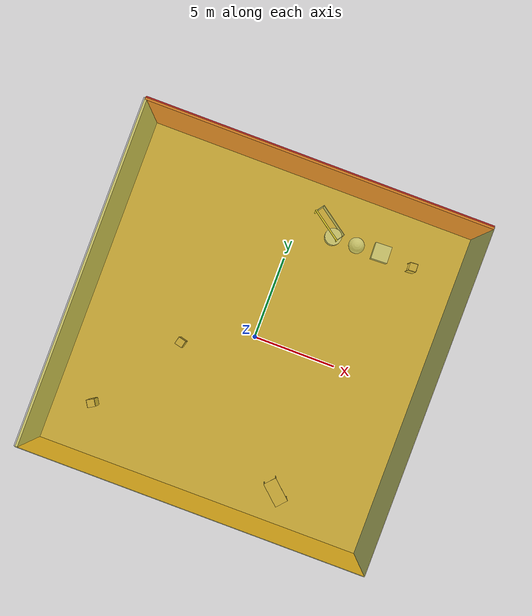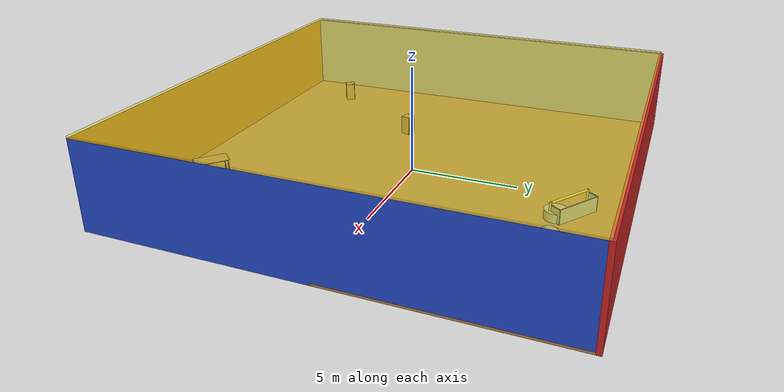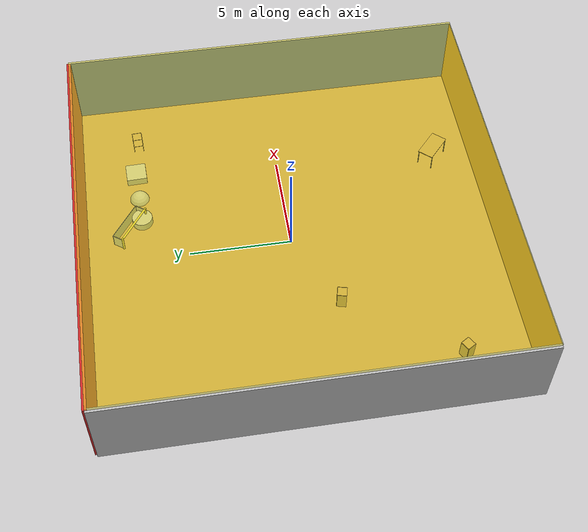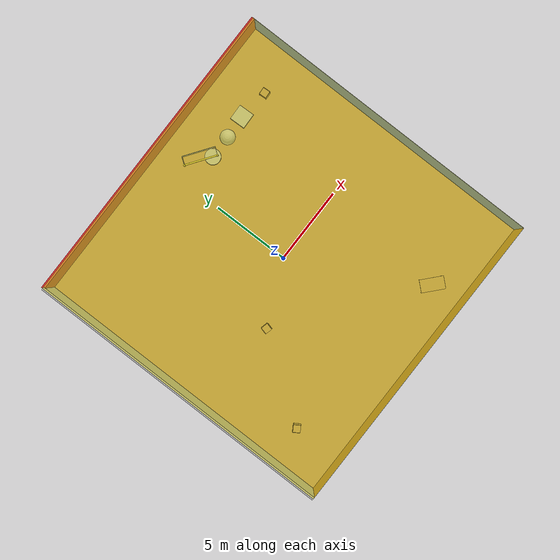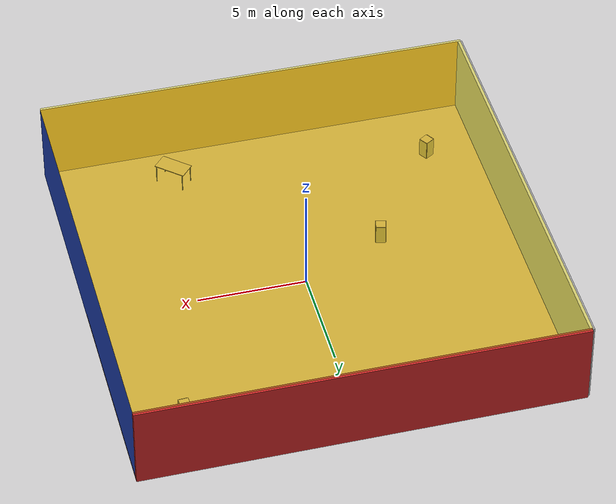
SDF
<sdf version="1.4">
 <world name="default">
  <physics type="ode">
   <max_step_size>0.001</max_step_size>
   <real_time_factor>1</real_time_factor>
   <real_time_update_rate>1000</real_time_update_rate>
   <gravity>0 0 -9.8</gravity>
  </physics>
  <scene><ambient>0.4 0.4 0.4 1</ambient><background>0.7 0.7 0.7 1</background><shadows>1</shadows></scene>
  <model name="Surrounding">
   <static>1</static>
   <link name="Ceiling">
    <collision name="Ceiling_Collision"><geometry><box><size>20 20 0.1</size></box></geometry></collision>
    <visual name="Ceiling_Visual">
     <geometry><box><size>20 20 0.1</size></box></geometry>
     <material>
      <script>
       <uri>file://media/materials/scripts/gazebo.material</uri>
       <name>Gazebo/YellowTransparent</name>
      </script>
     </material>
    </visual>
    <pose>0 0 4.05 0 0 0</pose>
   </link>
   <link name="Wall_South">
    <collision name="Wall_South_Collision">
     <geometry><box><size>20 0 4</size></box></geometry>
     <pose>0 0 2 0 -0 0</pose>
    </collision>
    <visual name="Wall_South_Visual">
     <pose>0 0 2 0 -0 0</pose>
     <geometry><box><size>20 0 4</size></box></geometry>
     <material>
      <script><uri>file://media/materials/scripts/gazebo.material</uri><name>Gazebo/Orange</name></script>
     </material>
    </visual>
    <velocity_decay><linear>0</linear><angular>0</angular></velocity_decay>
    <pose>0 -10 0 0 -0 0</pose>
   </link>
   <link name="Wall_East">
    <collision name="Wall_21_Collision">
     <geometry><box><size>20 0 4</size></box></geometry>
     <pose>0 0 2 0 -0 0</pose>
    </collision>
    <visual name="Wall_21_Visual">
     <pose>0 0 2 0 -0 0</pose>
     <geometry><box><size>20 0 4</size></box></geometry>
     <material>
      <script><uri>file://media/materials/scripts/gazebo.material</uri><name>Gazebo/Blue</name></script>
     </material>
    </visual>
    <velocity_decay><linear>0</linear><angular>0</angular></velocity_decay>
    <pose>10 0 0 0 -0 1.5708</pose>
   </link>
   <link name="Wall_North">
    <collision name="Wall_22_Collision">
     <geometry><box><size>20 0.2 4</size></box></geometry>
     <pose>0 0 2 0 -0 0</pose>
    </collision>
    <visual name="Wall_22_Visual">
     <pose>0 0 2 0 -0 0</pose>
     <geometry><box><size>20 0.2 4</size></box></geometry>
     <material>
      <script><uri>file://media/materials/scripts/gazebo.material</uri><name>Gazebo/RedBright</name></script>
     </material>
    </visual>
    <velocity_decay><linear>0</linear><angular>0</angular></velocity_decay>
    <pose>0 10 0 0 -0 0</pose>
   </link>
   <link name="Wall_West">
    <collision name="Wall_23_Collision">
     <geometry><box><size>20 0.2 4</size></box></geometry>
     <pose>0 0 2 0 -0 0</pose>
    </collision>
    <visual name="Wall_23_Visual">
     <pose>0 0 2 0 -0 0</pose>
     <geometry><box><size>20 0.2 4</size></box></geometry>
     <material>
      <script><uri>file://media/materials/scripts/gazebo.material</uri><name>Gazebo/JointAnchor</name></script>
     </material>
    </visual>
    <velocity_decay><linear>0</linear><angular>0</angular></velocity_decay>
    <pose>-10 0 0 0 0 -1.5708</pose>
   </link>
   <link name="Ground_link">
    <collision name="collision">
     <pose>0 0 .05 0 -0 0</pose>
     <geometry><box><size>20 20 0.1</size></box></geometry>
    </collision>
    <visual name="visual">
     <pose>0 0 .05 0 -0 0</pose>
     <geometry><box><size>20 20 0.1</size></box></geometry>
     <material>
      <script><uri>file://media/materials/scripts/gazebo.material</uri><name>Gazebo/WoodFloor</name></script>
     </material>
    </visual>
   </link>
   <static>1</static>
  </model>
  <spherical_coordinates>
   <surface_model>EARTH_WGS84</surface_model>
   <latitude_deg>0</latitude_deg>
   <longitude_deg>0</longitude_deg>
   <elevation>0</elevation>
   <heading_deg>0</heading_deg>
  </spherical_coordinates>
  <light name="lightball_0" type="diffuse">
   <diffuse>0.8 0.8 0.8 1</diffuse>
   <specular>0.2 0.2 0.2 1</specular>
   <attenuation>
    <range>100</range>
    <constant>0.7</constant>
    <linear>0.01</linear>
    <quadratic>0.001</quadratic>
   </attenuation>
   <direction>-0.5 0.1 -0.9</direction>
   <pose>-5.35259485377 -3.09003432621 0.767199394633 0 0 0</pose>
  </light>
  <light name="lightball_1" type="diffuse">
   <diffuse>0.8 0.8 0.8 1</diffuse>
   <specular>0.2 0.2 0.2 1</specular>
   <attenuation>
    <range>100</range>
    <constant>0.7</constant>
    <linear>0.01</linear>
    <quadratic>0.001</quadratic>
   </attenuation>
   <direction>-0.5 0.1 -0.9</direction>
   <pose>-5.75067058367 -4.28329026193 2.8587672403 0 0 0</pose>
  </light>
  <light name="lightball_2" type="diffuse">
   <diffuse>0.8 0.8 0.8 1</diffuse>
   <specular>0.2 0.2 0.2 1</specular>
   <attenuation>
    <range>100</range>
    <constant>0.7</constant>
    <linear>0.01</linear>
    <quadratic>0.001</quadratic>
   </attenuation>
   <direction>-0.5 0.1 -0.9</direction>
   <pose>-6.73893136306 5.76373875126 3.1744354877 0 0 0</pose>
  </light>
  <light name="lightball_3" type="diffuse">
   <diffuse>0.8 0.8 0.8 1</diffuse>
   <specular>0.2 0.2 0.2 1</specular>
   <attenuation>
    <range>100</range>
    <constant>0.7</constant>
    <linear>0.01</linear>
    <quadratic>0.001</quadratic>
   </attenuation>
   <direction>-0.5 0.1 -0.9</direction>
   <pose>7.26328773344 -3.86685721944 1.16067451997 0 0 0</pose>
  </light>
  <light name="lightball_4" type="diffuse">
   <diffuse>0.8 0.8 0.8 1</diffuse>
   <specular>0.2 0.2 0.2 1</specular>
   <attenuation>
    <range>100</range>
    <constant>0.7</constant>
    <linear>0.01</linear>
    <quadratic>0.001</quadratic>
   </attenuation>
   <direction>-0.5 0.1 -0.9</direction>
   <pose>-4.68792334027 0.853808469365 0.560826678725 0 0 0</pose>
  </light>
  <light name="lightball_5" type="diffuse">
   <diffuse>0.8 0.8 0.8 1</diffuse>
   <specular>0.2 0.2 0.2 1</specular>
   <attenuation>
    <range>100</range>
    <constant>0.7</constant>
    <linear>0.01</linear>
    <quadratic>0.001</quadratic>
   </attenuation>
   <direction>-0.5 0.1 -0.9</direction>
   <pose>0.343034214043 9.7761554347 3.03986583309 0 0 0</pose>
  </light>
  <include><uri>model://cabinet</uri><pose>-7.58789593925 -6.93943607702 0 0 0 2.11999195448</pose></include>
  <include><uri>model://cabinet</uri><pose>-3.95368759902 -1.80518962059 0 0 0 1.32959130272</pose></include>
  <include>
   <uri>model://robocup_3Dsim_goal</uri>
   <pose>1.63208967605 7.56397952906 0 0 0 0.95195158712</pose>
  </include>
  <include><uri>model://table</uri><pose>4.287715841 -8.04783286417 0 0 0 2.40951364465</pose></include>
  <include>
   <uri>model://textured_shapes</uri>
   <pose>3.75555951399 7.20462610547 0 0 0 1.60327478688</pose>
  </include>
  <include><uri>model://cabinet</uri><pose>7.19632514916 7.0158076946 0 0 0 0.0529656434721</pose></include>
 </world>
</sdf>

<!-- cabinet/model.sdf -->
<sdf version="1.5">
  <model name="cabinet">
    <static>true</static>
    <link name="cabinet_bottom_plate">
      <inertial>
        <pose>0 0 -1 0 0 0</pose>
        <inertia>
          <ixx>2.050000</ixx>
          <ixy>0</ixy>
          <ixz>0</ixz>
          <iyy>2.050000</iyy>
          <iyz>0</iyz>
          <izz>2.050000</izz>
        </inertia>
        <mass>25.000000</mass>
      </inertial>
      <collision name="cabinet_bottom_plate_geom">
        <pose>0 0 0.010000 0 0 0</pose>
        <geometry>
          <box>
            <size>0.450000 0.450000 0.020000</size>
          </box>
        </geometry>
      </collision>
      <visual name="cabinet_bottom_plate_geom_visual">
        <pose>0 0 0.010000 0 0 0</pose>
        <geometry>
          <box>
            <size>0.450000 0.450000 0.020000</size>
          </box>
        </geometry>
        <material>
          <script>
            <uri>model://media/materials/scripts/gazebo.material</uri>
            <name>Gazebo/Wood</name>
          </script>
        </material>
      </visual>
      <collision name="cabinet_bottom_plate_geom_cabinet_back_plate">
        <pose>0.235000 0 0.510000 0 0 0</pose>
        <geometry>
          <box>
            <size>0.020000 0.450000 1.020000</size>
          </box>
        </geometry>
      </collision>
      <visual name="cabinet_bottom_plate_geom_cabinet_back_plate_visual">
        <pose>0.235000 0 0.510000 0 0 0</pose>
        <geometry>
          <box>
            <size>0.020000 0.450000 1.020000</size>
          </box>
        </geometry>
        <material>
          <script>
            <uri>model://media/materials/scripts/gazebo.material</uri>
            <name>Gazebo/Wood</name>
          </script>
        </material>
      </visual>
      <collision name="cabinet_bottom_plate_geom_cabinet_left_plate">
        <pose>0 0.235000 0.510000 0 0 0</pose>
        <geometry>
          <box>
            <size>0.450000 0.020000 1.020000</size>
          </box>
        </geometry>
      </collision>
      <visual name="cabinet_bottom_plate_geom_cabinet_left_plate_visual">
        <pose>0 0.235000 0.510000 0 0 0</pose>
        <geometry>
          <box>
            <size>0.450000 0.020000 1.020000</size>
          </box>
        </geometry>
        <material>
          <script>
            <uri>model://media/materials/scripts/gazebo.material</uri>
            <name>Gazebo/Wood</name>
          </script>
        </material>
      </visual>
      <collision name="cabinet_bottom_plate_geom_cabinet_middle_plate">
        <pose>0 0 0.510000 0 0 0</pose>
        <geometry>
          <box>
            <size>0.450000 0.450000 0.020000</size>
          </box>
        </geometry>
      </collision>
      <visual name="cabinet_bottom_plate_geom_cabinet_middle_plate_visual">
        <pose>0 0 0.510000 0 0 0</pose>
        <geometry>
          <box>
            <size>0.450000 0.450000 0.020000</size>
          </box>
        </geometry>
        <material>
          <script>
            <uri>model://media/materials/scripts/gazebo.material</uri>
            <name>Gazebo/Wood</name>
          </script>
        </material>
      </visual>
      <collision name="cabinet_bottom_plate_geom_cabinet_right_plate">
        <pose>0 -0.235000 0.510000 0 0 0</pose>
        <geometry>
          <box>
            <size>0.450000 0.020000 1.020000</size>
          </box>
        </geometry>
      </collision>
      <visual name="cabinet_bottom_plate_geom_cabinet_right_plate_visual">
        <pose>0 -0.235000 0.510000 0 0 0</pose>
        <geometry>
          <box>
            <size>0.450000 0.020000 1.020000</size>
          </box>
        </geometry>
        <material>
          <script>
            <uri>model://media/materials/scripts/gazebo.material</uri>
            <name>Gazebo/Wood</name>
          </script>
        </material>
      </visual>
      <collision name="cabinet_bottom_plate_geom_cabinet_top_plate">
        <pose>0 0 1.010000 0 0 0</pose>
        <geometry>
          <box>
            <size>0.450000 0.450000 0.020000</size>
          </box>
        </geometry>
      </collision>
      <visual name="cabinet_bottom_plate_geom_cabinet_top_plate_visual">
        <pose>0 0 1.010000 0 0 0</pose>
        <geometry>
          <box>
            <size>0.450000 0.450000 0.020000</size>
          </box>
        </geometry>
        <material>
          <script>
            <uri>model://media/materials/scripts/gazebo.material</uri>
            <name>Gazebo/Wood</name>
          </script>
        </material>
      </visual>
    </link>
  </model>
</sdf>

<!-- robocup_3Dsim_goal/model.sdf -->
<sdf version="1.5">
  <model name="robocup_3d_goal">
    <static>true</static>
    <link name="left_post">
      <pose>0 1.05 0.45 0 0 0</pose>
      <collision name="collision">
        <geometry>
          <cylinder>
            <radius>0.05</radius>
            <length>0.9</length>
          </cylinder>
        </geometry>
      </collision>
      <visual name="visual">
        <geometry>
          <cylinder>
            <radius>0.05</radius>
            <length>0.9</length>
          </cylinder>
        </geometry>
        <material>
          <script>
            <uri>file://media/materials/scripts/gazebo.material</uri>
            <name>Gazebo/ZincYellow</name>
          </script>
        </material>
      </visual>
    </link>
    <link name="left_support_horiz_lower">
      <pose>0.30 1.05 0.01 0 0 0</pose>
      <collision name="collision">
        <geometry>
          <box>
            <size>0.50 0.02 0.02</size>
          </box>
        </geometry>
      </collision>
      <visual name="visual">
        <geometry>
          <box>
            <size>0.50 0.02 0.02</size>
          </box>
        </geometry>
        <material>
          <script>
            <uri>file://media/materials/scripts/gazebo.material</uri>
            <name>Gazebo/White</name>
          </script>
        </material>
      </visual>
    </link>
    <link name="left_support_horiz_upper">
      <pose>0.30 1.05 0.79 0 0 0</pose>
      <collision name="collision">
        <geometry>
          <box>
            <size>0.50 0.02 0.02</size>
          </box>
        </geometry>
      </collision>
      <visual name="visual">
        <geometry>
          <box>
            <size>0.50 0.02 0.02</size>
          </box>
        </geometry>
        <material>
          <script>
            <uri>file://media/materials/scripts/gazebo.material</uri>
            <name>Gazebo/White</name>
          </script>
        </material>
      </visual>
    </link>
    <link name="left_support_vertical">
      <pose>0.56 1.05 0.4 0 1.5708 0</pose>
      <collision name="collision">
        <geometry>
          <box>
            <size>0.80 0.02 0.02</size>
          </box>
        </geometry>
      </collision>
      <visual name="visual">
        <geometry>
          <box>
            <size>0.80 0.02 0.02</size>
          </box>
        </geometry>
        <material>
          <script>
            <uri>file://media/materials/scripts/gazebo.material</uri>
            <name>Gazebo/White</name>
          </script>
        </material>
      </visual>
    </link>
    <link name="right_support_horiz_lower">
      <pose>0.30 -1.05 0.01 0 0 0</pose>
      <collision name="collision">
        <geometry>
          <box>
            <size>0.50 0.02 0.02</size>
          </box>
        </geometry>
      </collision>
      <visual name="visual">
        <geometry>
          <box>
            <size>0.50 0.02 0.02</size>
          </box>
        </geometry>
        <material>
          <script>
            <uri>file://media/materials/scripts/gazebo.material</uri>
            <name>Gazebo/White</name>
          </script>
        </material>
      </visual>
    </link>
    <link name="right_support_horiz_upper">
      <pose>0.30 -1.05 0.79 0 0 0</pose>
      <collision name="collision">
        <geometry>
          <box>
            <size>0.50 0.02 0.02</size>
          </box>
        </geometry>
      </collision>
      <visual name="visual">
        <geometry>
          <box>
            <size>0.50 0.02 0.02</size>
          </box>
        </geometry>
        <material>
          <script>
            <uri>file://media/materials/scripts/gazebo.material</uri>
            <name>Gazebo/White</name>
          </script>
        </material>
      </visual>
    </link>
    <link name="right_support_vertical">
      <pose>0.56 -1.05 0.4 0 1.5708 0</pose>
      <collision name="collision">
        <geometry>
          <box>
            <size>0.80 0.02 0.02</size>
          </box>
        </geometry>
      </collision>
      <visual name="visual">
        <geometry>
          <box>
            <size>0.80 0.02 0.02</size>
          </box>
        </geometry>
        <material>
          <script>
            <uri>file://media/materials/scripts/gazebo.material</uri>
            <name>Gazebo/White</name>
          </script>
        </material>
      </visual>
    </link>
    <link name="center_support_horiz_lower">
      <pose>0.56 0 0.01 0 1.5708 0</pose>
      <collision name="collision">
        <geometry>
          <box>
            <size>0.02 2.08 0.02</size>
          </box>
        </geometry>
      </collision>
      <visual name="visual">
        <geometry>
          <box>
            <size>0.02 2.08 0.02</size>
          </box>
        </geometry>
        <material>
          <script>
            <uri>file://media/materials/scripts/gazebo.material</uri>
            <name>Gazebo/White</name>
          </script>
        </material>
      </visual>
    </link>
    <link name="center_support_horiz_upper">
      <pose>0.56 0 0.79 0 1.5708 0</pose>
      <collision name="collision">
        <geometry>
          <box>
            <size>0.02 2.08 0.02</size>
          </box>
        </geometry>
      </collision>
      <visual name="visual">
        <geometry>
          <box>
            <size>0.02 2.08 0.02</size>
          </box>
        </geometry>
        <material>
          <script>
            <uri>file://media/materials/scripts/gazebo.material</uri>
            <name>Gazebo/White</name>
          </script>
        </material>
      </visual>
    </link>
    <link name="right_post">
      <pose>0 -1.05 0.45 0 0 0</pose>
      <collision name="collision">
        <geometry>
          <cylinder>
            <radius>0.05</radius>
            <length>0.9</length>
          </cylinder>
        </geometry>
      </collision>
      <visual name="visual">
        <geometry>
          <cylinder>
            <radius>0.05</radius>
            <length>0.9</length>
          </cylinder>
        </geometry>
        <material>
          <script>
            <uri>file://media/materials/scripts/gazebo.material</uri>
            <name>Gazebo/ZincYellow</name>
          </script>
        </material>
      </visual>
    </link>
    <link name="crossbar">
      <pose>0 0 0.85 1.57 1.57 0</pose>
      <collision name="collision">
        <geometry>
          <cylinder>
            <radius>0.05</radius>
            <length>2.0</length>
          </cylinder>
        </geometry>
      </collision>
      <visual name="visual">
        <geometry>
          <cylinder>
            <radius>0.05</radius>
            <length>2.0</length>
          </cylinder>
        </geometry>
        <material>
          <script>
            <uri>file://media/materials/scripts/gazebo.material</uri>
            <name>Gazebo/ZincYellow</name>
          </script>
        </material>
      </visual>
    </link>
    <link name="center_net">
      <pose>0.56 0 0.40 0 0 0</pose>
      <collision name="collision">
        <geometry>
          <box>
            <size>0.01 2.1 0.80</size>
          </box>
        </geometry>
      </collision>
      <visual name="visual">
        <geometry>
          <box>
            <size>0.01 2.1 0.80</size>
          </box>
        </geometry>
        <material>
          <script>
            <uri>model://../model_source/models/robocup09_spl_field/materials/scripts/</uri>
            <uri>model://../model_source/models/robocup09_spl_field/materials/textures/</uri>
            <name>RoboCup/Net</name>
          </script>
        </material>
      </visual>
    </link>
    <link name="left_net">
      <pose>0.30 1.05 0.40 0 0 0</pose>
      <collision name="collision">
        <geometry>
          <box>
            <size>0.50 0.01 0.76</size>
          </box>
        </geometry>
      </collision>
      <visual name="visual">
        <geometry>
          <box>
            <size>0.50 0.01 0.76</size>
          </box>
        </geometry>
        <material>
          <script>
            <uri>model://../model_source/models/robocup09_spl_field/materials/scripts/</uri>
            <uri>model://../model_source/models/robocup09_spl_field/materials/textures/</uri>
            <name>RoboCup/Net</name>
          </script>
        </material>
      </visual>
    </link>
    <link name="right_net">
      <pose>0.30 -1.05 0.40 0 0 0</pose>
      <collision name="collision">
        <geometry>
          <box>
            <size>0.50 0.01 0.76</size>
          </box>
        </geometry>
      </collision>
      <visual name="visual">
        <geometry>
          <box>
            <size>0.50 0.01 0.76</size>
          </box>
        </geometry>
        <material>
          <script>
            <uri>model://../model_source/models/robocup09_spl_field/materials/scripts/</uri>
            <uri>model://../model_source/models/robocup09_spl_field/materials/textures/</uri>
            <name>RoboCup/Net</name>
          </script>
        </material>
      </visual>
    </link>
  </model>
</sdf>

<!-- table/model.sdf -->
<sdf version="1.5">
  <model name="table">
    <static>true</static>
    <link name="link">
      <collision name="surface">
        <pose>0 0 1.0 0 0 0</pose>
        <geometry>
          <box>
            <size>1.5 0.8 0.03</size>
          </box>
        </geometry>
        <surface>
          <friction>
            <ode>
              <mu>0.6</mu>
              <mu2>0.6</mu2>
            </ode>
          </friction>
        </surface>
      </collision>
      <visual name="visual1">
        <pose>0 0 1.0 0 0 0</pose>
        <geometry>
          <box>
            <size>1.5 0.8 0.03</size>
          </box>
        </geometry>
        <material>
          <script>
            <uri>model://media/materials/scripts/gazebo.material</uri>
            <name>Gazebo/Wood</name>
          </script>
        </material>
      </visual>
      <collision name="front_left_leg">
        <pose>0.68 0.38 0.5 0 0 0</pose>
        <geometry>
          <cylinder>
            <radius>0.02</radius>
            <length>1.0</length>
          </cylinder>
        </geometry>
      </collision>
      <visual name="front_left_leg">
        <pose>0.68 0.38 0.5 0 0 0</pose>
        <geometry>
          <cylinder>
            <radius>0.02</radius>
            <length>1.0</length>
          </cylinder>
        </geometry>
        <material>
          <script>
            <uri>model://media/materials/scripts/gazebo.material</uri>
            <name>Gazebo/Grey</name>
          </script>
        </material>
      </visual>
      <collision name="front_right_leg">
        <pose>0.68 -0.38 0.5 0 0 0</pose>
        <geometry>
          <cylinder>
            <radius>0.02</radius>
            <length>1.0</length>
          </cylinder>
        </geometry>
      </collision>
      <visual name="front_right_leg">
        <pose>0.68 -0.38 0.5 0 0 0</pose>
        <geometry>
          <cylinder>
            <radius>0.02</radius>
            <length>1.0</length>
          </cylinder>
        </geometry>
        <material>
          <script>
            <uri>model://media/materials/scripts/gazebo.material</uri>
            <name>Gazebo/Grey</name>
          </script>
        </material>
      </visual>
      <collision name="back_right_leg">
        <pose>-0.68 -0.38 0.5 0 0 0</pose>
        <geometry>
          <cylinder>
            <radius>0.02</radius>
            <length>1.0</length>
          </cylinder>
        </geometry>
      </collision>
      <visual name="back_right_leg">
        <pose>-0.68 -0.38 0.5 0 0 0</pose>
        <geometry>
          <cylinder>
            <radius>0.02</radius>
            <length>1.0</length>
          </cylinder>
        </geometry>
        <material>
          <script>
            <uri>model://media/materials/scripts/gazebo.material</uri>
            <name>Gazebo/Grey</name>
          </script>
        </material>
      </visual>
      <collision name="back_left_leg">
        <pose>-0.68 0.38 0.5 0 0 0</pose>
        <geometry>
          <cylinder>
            <radius>0.02</radius>
            <length>1.0</length>
          </cylinder>
        </geometry>
      </collision>
      <visual name="back_left_leg">
        <pose>-0.68 0.38 0.5 0 0 0</pose>
        <geometry>
          <cylinder>
            <radius>0.02</radius>
            <length>1.0</length>
          </cylinder>
        </geometry>
        <material>
          <script>
            <uri>model://media/materials/scripts/gazebo.material</uri>
            <name>Gazebo/Grey</name>
          </script>
        </material>
      </visual>
    </link>
  </model>
</sdf>

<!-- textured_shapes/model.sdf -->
<sdf version="1.6">
  <model name="textured_shapes">
    <pose>0 0 0.5 0 0 0</pose>
    <link name="box">
      <pose>0 -1.5 0 0 0 0</pose>
      <collision name="collision">
        <geometry>
          <box>
            <size>1 1 1</size>
          </box>
        </geometry>
      </collision>
      <visual name="visual">
        <geometry>
          <box>
            <size>1 1 1</size>
          </box>
        </geometry>
        <material>
          <script>
            <uri>model://../model_source/models/textured_shapes/materials/scripts</uri>
            <uri>model://../model_source/models/textured_shapes/materials/textures</uri>
            <name>TexturedShape/Squares</name>
          </script>
        </material>
      </visual>
    </link>
    <link name="sphere">
      <collision name="collision">
        <geometry>
          <sphere>
            <radius>0.5</radius>
          </sphere>
        </geometry>
      </collision>
      <visual name="visual">
        <geometry>
          <sphere>
            <radius>0.5</radius>
          </sphere>
        </geometry>
        <material>
          <script>
            <uri>model://../model_source/models/textured_shapes/materials/scripts</uri>
            <uri>model://../model_source/models/textured_shapes/materials/textures</uri>
            <name>TexturedShape/Squares</name>
          </script>
        </material>
      </visual>
    </link>
    <link name="cylinder">
      <pose>0 1.5 0 0 0 0</pose>
      <collision name="collision">
        <geometry>
          <cylinder>
            <radius>0.5</radius>
            <length>1</length>
          </cylinder>
        </geometry>
      </collision>
      <visual name="visual">
        <geometry>
          <cylinder>
            <radius>0.5</radius>
            <length>1</length>
          </cylinder>
        </geometry>
        <material>
          <script>
            <uri>model://../model_source/models/textured_shapes/materials/scripts</uri>
            <uri>model://../model_source/models/textured_shapes/materials/textures</uri>
            <name>TexturedShape/Squares</name>
          </script>
        </material>
      </visual>
    </link>
  </model>
</sdf>
